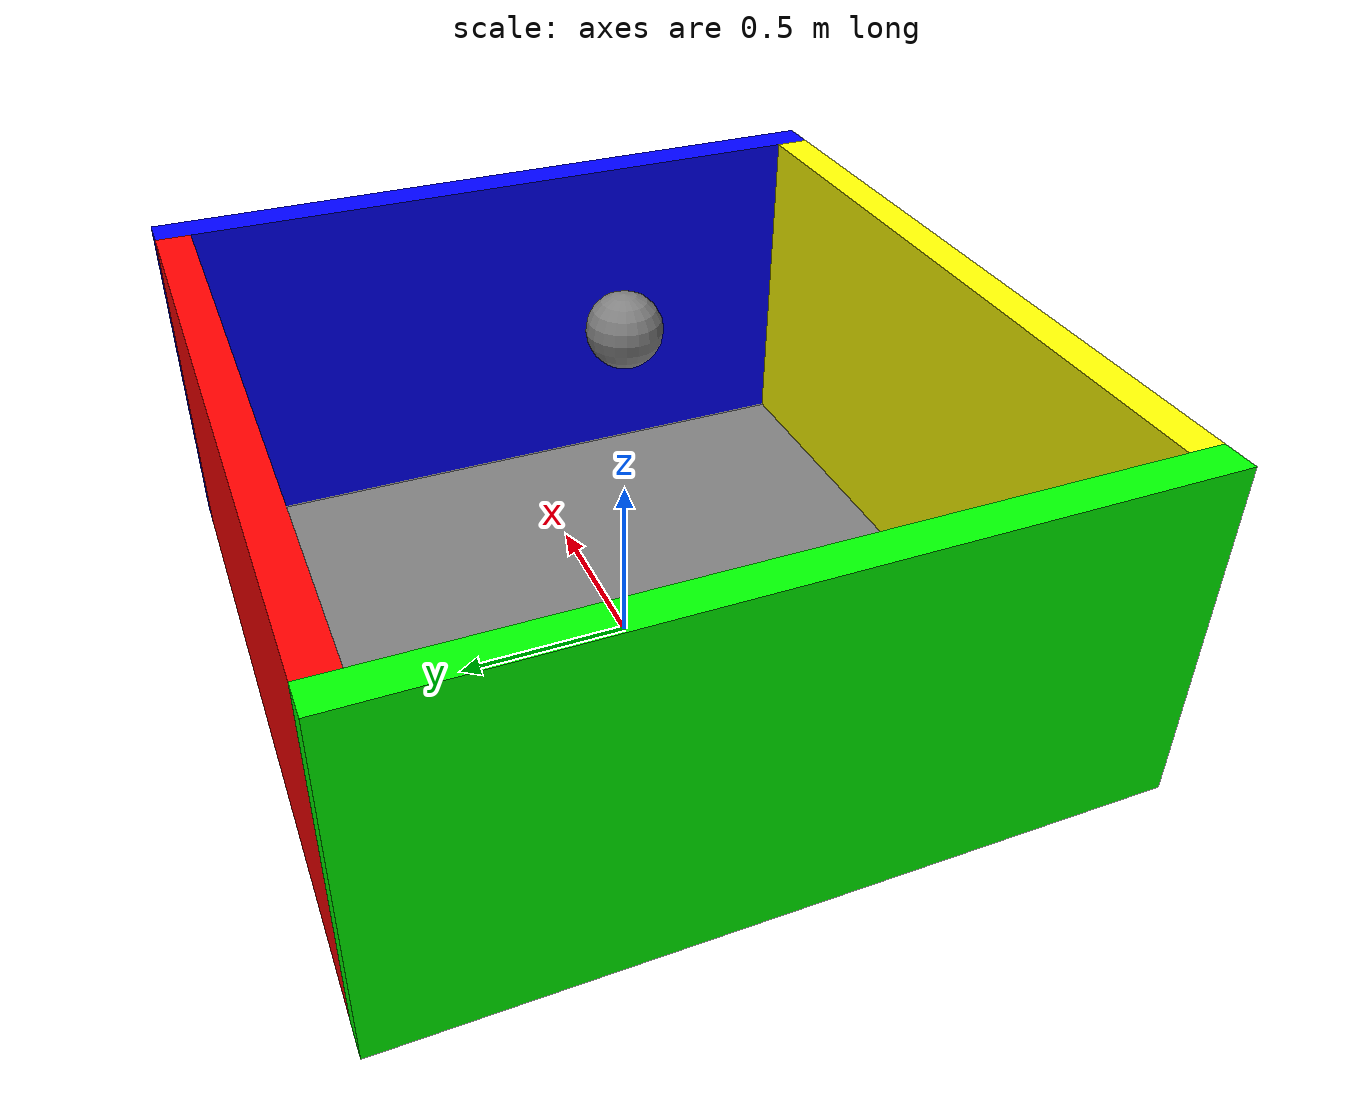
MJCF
<mujoco>
  <compiler angle="radian" />

  <!-- Enable Gravity -->
  <option gravity="0 0 -9.81" />

  <worldbody>
    <light name="top" pos="0 0 1" />

    <!-- Ball positioned above the floor -->
    <body pos="0 0 1">
      <joint type="free" />
      <geom name="sphere" type="sphere" size="0.1 0.1 0.1" rgba="0.5 0.5 0.5 1" />
    </body>

    <!-- Floor -->
    <geom name="floor" type="plane" size="1 1 0.1" rgba="0.5 0.5 0.5 1" />

    <!-- Back Wall -->
    <body name="back_wall" pos="0 1 0.5">
      <geom name="wall_back" type="box" size="1 0.05 0.5" rgba="1 0 0 1" />
    </body>

    <!-- Front Wall -->
    <body name="front_wall" pos="0 -1 0.5">
      <geom name="wall_front" type="box" size="1 0.05 0.5" rgba="1 1 0 1" />
    </body>

    <!-- Left Wall -->
    <body name="left_wall" pos="-1.05 0 0.5">
      <geom name="wall_left" type="box" size="0.05 1.05 0.5" rgba="0 1 0 1" />
    </body>

    <!-- Right Wall -->
    <body name="right_wall" pos="1.05 0 0.5">
      <geom name="wall_right" type="box" size="0.05 1.05 0.5" rgba="0 0 1 1" />
    </body>

    <!-- Ceiling (optional, can be uncommented if needed) -->

  </worldbody>
</mujoco>
